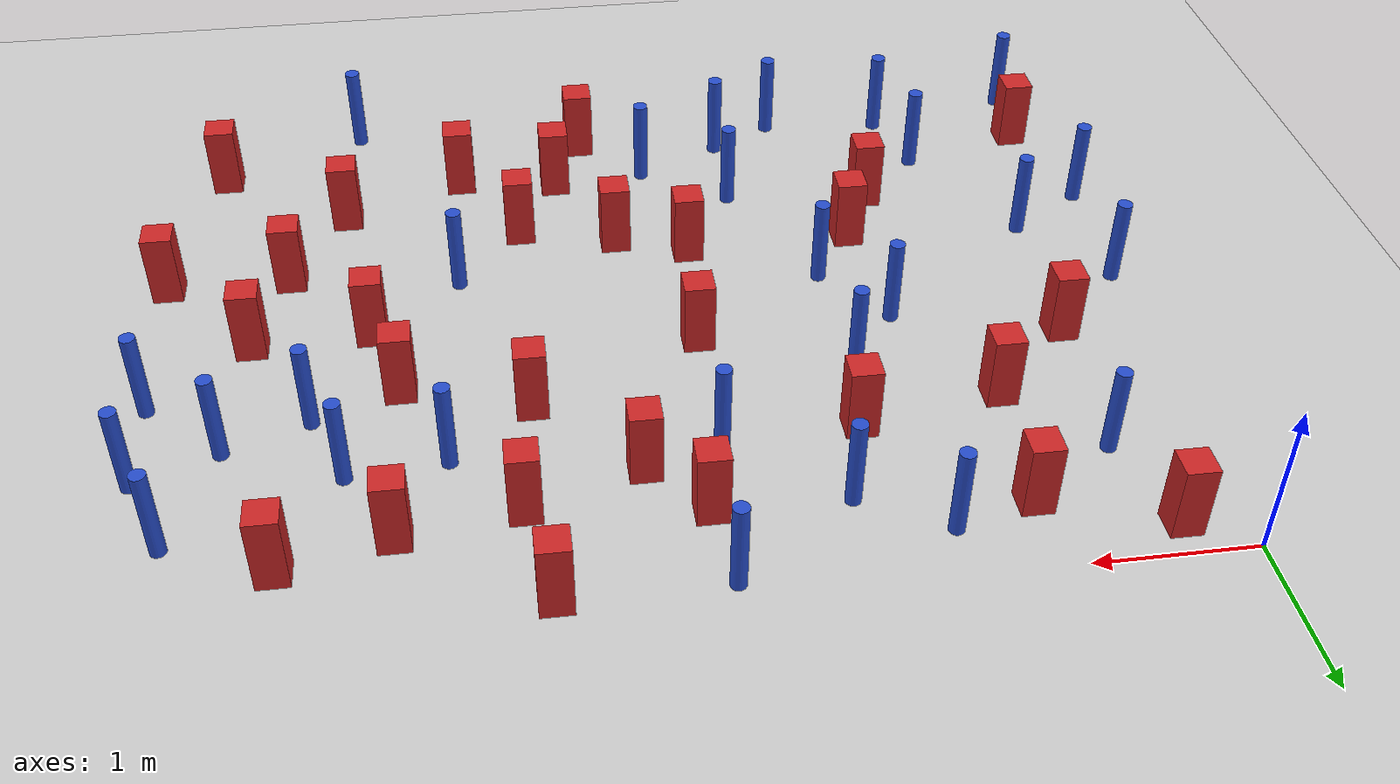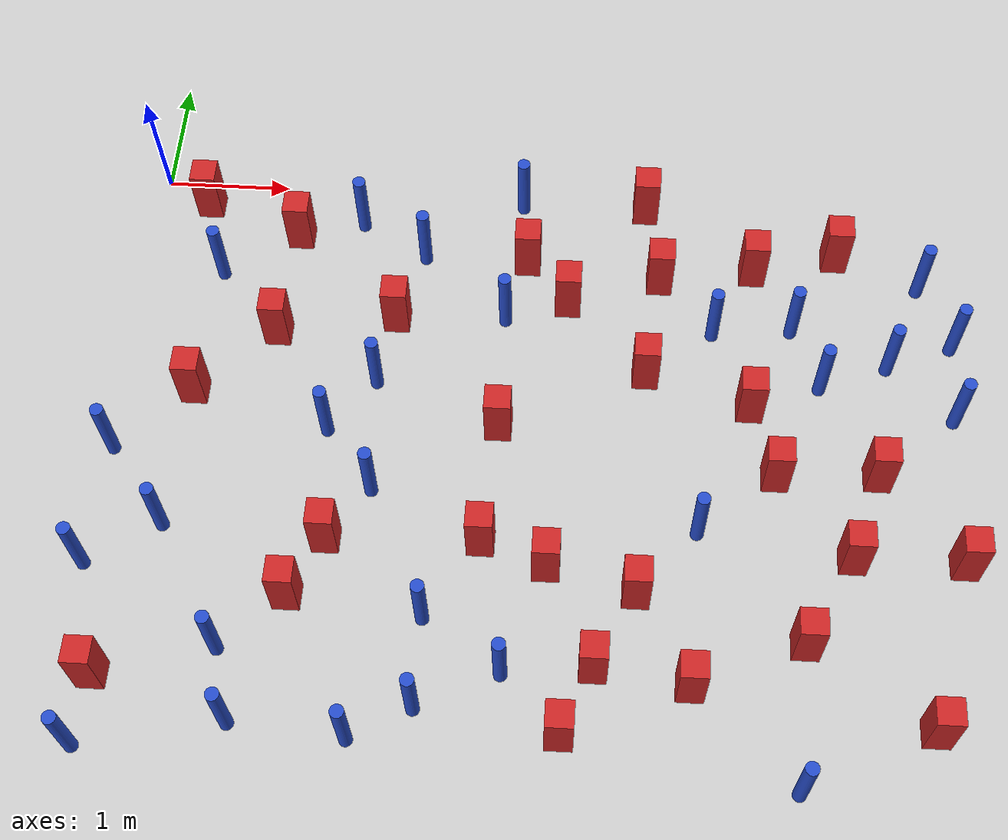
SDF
<sdf version="1.6">
 <world name="default">
  <model name="ground_plane">
   <static>1</static>
   <link name="link">
    <collision name="collision">
     <geometry><plane><normal>0 0 1</normal><size>100 100</size></plane></geometry>
     <surface><friction><ode><mu>100</mu><mu2>50</mu2></ode></friction></surface>
    </collision>
    <visual name="visual">
     <cast_shadows>0</cast_shadows>
     <geometry><plane><normal>0 0 1</normal><size>100 100</size></plane></geometry>
     <material>
      <ambient>1.0 1.0 1.0 1.0</ambient>
      <diffuse>0.8 0.8 0.8 1.0</diffuse>
      <specular>0.01 0.01 0.01 1.000000</specular>
     </material>
    </visual>
   </link>
  </model>
  <model name="NamedLocations">
   <static>true</static>
   <link name="DefaultStart"><pose>8.5 0 0 0 0 3.14</pose></link>
  </model>
  <model name="pole_obstacle0">
   <static>true</static>
   <pose>2.45319481599 -4.44269924084 7.38925637345e-09 -8.47170692798e-08 1.24976765033e-08 -1.74513093019e-07</pose>
   <link name="link">
    <pose>0 0 0.3 0 -0 0</pose>
    <inertial>
     <mass>1</mass>
     <inertia><ixx>0.145833</ixx><ixy>0</ixy><ixz>0</ixz><iyy>0.145833</iyy><iyz>0</iyz><izz>0.125</izz></inertia>
    </inertial>
    <collision name="collision">
     <geometry><cylinder><radius>0.05</radius><length>.6</length></cylinder></geometry>
    </collision>
    <visual name="visual">
     <geometry><cylinder><radius>0.05</radius><length>.6</length></cylinder></geometry>
     <material>
      <script><name>Gazebo/Blue</name><uri>file://media/materials/scripts/gazebo.material</uri></script>
     </material>
    </visual>
   </link>
  </model>
  <model name="pole_obstacle1">
   <static>true</static>
   <pose>5.110812077 -4.89288464973 7.38925637345e-09 -8.47170692796e-08 1.24976764786e-08 -1.74513093032e-07</pose>
   <link name="link">
    <pose>0 0 0.3 0 -0 0</pose>
    <inertial>
     <mass>1</mass>
     <inertia><ixx>0.145833</ixx><ixy>0</ixy><ixz>0</ixz><iyy>0.145833</iyy><iyz>0</iyz><izz>0.125</izz></inertia>
    </inertial>
    <collision name="collision">
     <geometry><cylinder><radius>0.05</radius><length>.6</length></cylinder></geometry>
    </collision>
    <visual name="visual">
     <geometry><cylinder><radius>0.05</radius><length>.6</length></cylinder></geometry>
     <material>
      <script><name>Gazebo/Blue</name><uri>file://media/materials/scripts/gazebo.material</uri></script>
     </material>
    </visual>
   </link>
  </model>
  <model name="square_post_obstacle6">
   <static>true</static>
   <pose>4.00243463076 -1.67645214226 1.91545236811e-07 -7.35059704564e-06 1.12565212e-07 2.39332434364e-05</pose>
   <link name="link">
    <pose>0 0 0.25 0 -0 0</pose>
    <inertial>
     <mass>100</mass>
     <inertia>
      <ixx>0.166667</ixx>
      <ixy>0</ixy>
      <ixz>0</ixz>
      <iyy>0.166667</iyy>
      <iyz>0</iyz>
      <izz>0.166667</izz>
     </inertia>
    </inertial>
    <collision name="collision"><geometry><box><size>.2 .2 .5</size></box></geometry></collision>
    <visual name="visual">
     <geometry><box><size>.2 .2 .5</size></box></geometry>
     <material>
      <script><name>Gazebo/Red</name><uri>file://media/materials/scripts/gazebo.material</uri></script>
     </material>
    </visual>
   </link>
  </model>
  <model name="pole_obstacle7">
   <static>true</static>
   <pose>6.15677421784 -0.760147875584 7.38925637345e-09 -8.47170692799e-08 1.24976765038e-08 -1.74513093018e-07</pose>
   <link name="link">
    <pose>0 0 0.3 0 -0 0</pose>
    <inertial>
     <mass>1</mass>
     <inertia><ixx>0.145833</ixx><ixy>0</ixy><ixz>0</ixz><iyy>0.145833</iyy><iyz>0</iyz><izz>0.125</izz></inertia>
    </inertial>
    <collision name="collision">
     <geometry><cylinder><radius>0.05</radius><length>.6</length></cylinder></geometry>
    </collision>
    <visual name="visual">
     <geometry><cylinder><radius>0.05</radius><length>.6</length></cylinder></geometry>
     <material>
      <script><name>Gazebo/Blue</name><uri>file://media/materials/scripts/gazebo.material</uri></script>
     </material>
    </visual>
   </link>
  </model>
  <model name="square_post_obstacle12">
   <static>true</static>
   <pose>3.03835223823 -0.663720716733 1.91545236811e-07 -7.35059704564e-06 1.12565212e-07 2.39332434364e-05</pose>
   <link name="link">
    <pose>0 0 0.25 0 -0 0</pose>
    <inertial>
     <mass>100</mass>
     <inertia>
      <ixx>0.166667</ixx>
      <ixy>0</ixy>
      <ixz>0</ixz>
      <iyy>0.166667</iyy>
      <iyz>0</iyz>
      <izz>0.166667</izz>
     </inertia>
    </inertial>
    <collision name="collision"><geometry><box><size>.2 .2 .5</size></box></geometry></collision>
    <visual name="visual">
     <geometry><box><size>.2 .2 .5</size></box></geometry>
     <material>
      <script><name>Gazebo/Red</name><uri>file://media/materials/scripts/gazebo.material</uri></script>
     </material>
    </visual>
   </link>
  </model>
  <model name="pole_obstacle14">
   <static>true</static>
   <pose>0.145431486361 -4.83074506989 7.38925637345e-09 -8.471706928e-08 1.24976765036e-08 -1.74513093019e-07</pose>
   <link name="link">
    <pose>0 0 0.3 0 -0 0</pose>
    <inertial>
     <mass>1</mass>
     <inertia><ixx>0.145833</ixx><ixy>0</ixy><ixz>0</ixz><iyy>0.145833</iyy><iyz>0</iyz><izz>0.125</izz></inertia>
    </inertial>
    <collision name="collision">
     <geometry><cylinder><radius>0.05</radius><length>.6</length></cylinder></geometry>
    </collision>
    <visual name="visual">
     <geometry><cylinder><radius>0.05</radius><length>.6</length></cylinder></geometry>
     <material>
      <script><name>Gazebo/Blue</name><uri>file://media/materials/scripts/gazebo.material</uri></script>
     </material>
    </visual>
   </link>
  </model>
  <model name="pole_obstacle16">
   <static>true</static>
   <pose>1.93347617222 -1.84121903709 7.38925637345e-09 -8.471706928e-08 1.24976765079e-08 -1.74513093017e-07</pose>
   <link name="link">
    <pose>0 0 0.3 0 -0 0</pose>
    <inertial>
     <mass>1</mass>
     <inertia><ixx>0.145833</ixx><ixy>0</ixy><ixz>0</ixz><iyy>0.145833</iyy><iyz>0</iyz><izz>0.125</izz></inertia>
    </inertial>
    <collision name="collision">
     <geometry><cylinder><radius>0.05</radius><length>.6</length></cylinder></geometry>
    </collision>
    <visual name="visual">
     <geometry><cylinder><radius>0.05</radius><length>.6</length></cylinder></geometry>
     <material>
      <script><name>Gazebo/Blue</name><uri>file://media/materials/scripts/gazebo.material</uri></script>
     </material>
    </visual>
   </link>
  </model>
  <model name="pole_obstacle18">
   <static>true</static>
   <pose>2.45848965624 -3.77160966524 7.38925637345e-09 -8.47170692798e-08 1.24976764939e-08 -1.74513093025e-07</pose>
   <link name="link">
    <pose>0 0 0.3 0 -0 0</pose>
    <inertial>
     <mass>1</mass>
     <inertia><ixx>0.145833</ixx><ixy>0</ixy><ixz>0</ixz><iyy>0.145833</iyy><iyz>0</iyz><izz>0.125</izz></inertia>
    </inertial>
    <collision name="collision">
     <geometry><cylinder><radius>0.05</radius><length>.6</length></cylinder></geometry>
    </collision>
    <visual name="visual">
     <geometry><cylinder><radius>0.05</radius><length>.6</length></cylinder></geometry>
     <material>
      <script><name>Gazebo/Blue</name><uri>file://media/materials/scripts/gazebo.material</uri></script>
     </material>
    </visual>
   </link>
  </model>
  <model name="pole_obstacle23">
   <static>true</static>
   <pose>2.20990066824 -0.653696793738 7.38925637345e-09 -8.471706928e-08 1.24976765177e-08 -1.74513093012e-07</pose>
   <link name="link">
    <pose>0 0 0.3 0 -0 0</pose>
    <inertial>
     <mass>1</mass>
     <inertia><ixx>0.145833</ixx><ixy>0</ixy><ixz>0</ixz><iyy>0.145833</iyy><iyz>0</iyz><izz>0.125</izz></inertia>
    </inertial>
    <collision name="collision">
     <geometry><cylinder><radius>0.05</radius><length>.6</length></cylinder></geometry>
    </collision>
    <visual name="visual">
     <geometry><cylinder><radius>0.05</radius><length>.6</length></cylinder></geometry>
     <material>
      <script><name>Gazebo/Blue</name><uri>file://media/materials/scripts/gazebo.material</uri></script>
     </material>
    </visual>
   </link>
  </model>
  <model name="pole_obstacle28">
   <static>true</static>
   <pose>2.97211600172 -0.102306544609 7.38925637345e-09 -8.471706928e-08 1.24976765088e-08 -1.74513093017e-07</pose>
   <link name="link">
    <pose>0 0 0.3 0 -0 0</pose>
    <inertial>
     <mass>1</mass>
     <inertia><ixx>0.145833</ixx><ixy>0</ixy><ixz>0</ixz><iyy>0.145833</iyy><iyz>0</iyz><izz>0.125</izz></inertia>
    </inertial>
    <collision name="collision">
     <geometry><cylinder><radius>0.05</radius><length>.6</length></cylinder></geometry>
    </collision>
    <visual name="visual">
     <geometry><cylinder><radius>0.05</radius><length>.6</length></cylinder></geometry>
     <material>
      <script><name>Gazebo/Blue</name><uri>file://media/materials/scripts/gazebo.material</uri></script>
     </material>
    </visual>
   </link>
  </model>
  <model name="square_post_obstacle37">
   <static>true</static>
   <pose>1.17955000722 -0.497676568372 1.91545236811e-07 -7.35059704564e-06 1.12565212e-07 2.39332434364e-05</pose>
   <link name="link">
    <pose>0 0 0.25 0 -0 0</pose>
    <inertial>
     <mass>100</mass>
     <inertia>
      <ixx>0.166667</ixx>
      <ixy>0</ixy>
      <ixz>0</ixz>
      <iyy>0.166667</iyy>
      <iyz>0</iyz>
      <izz>0.166667</izz>
     </inertia>
    </inertial>
    <collision name="collision"><geometry><box><size>.2 .2 .5</size></box></geometry></collision>
    <visual name="visual">
     <geometry><box><size>.2 .2 .5</size></box></geometry>
     <material>
      <script><name>Gazebo/Red</name><uri>file://media/materials/scripts/gazebo.material</uri></script>
     </material>
    </visual>
   </link>
  </model>
  <model name="pole_obstacle43">
   <static>true</static>
   <pose>4.41286751085 -2.99656042909 7.38925637345e-09 -8.47170692798e-08 1.24976764937e-08 -1.74513093023e-07</pose>
   <link name="link">
    <pose>0 0 0.3 0 -0 0</pose>
    <inertial>
     <mass>1</mass>
     <inertia><ixx>0.145833</ixx><ixy>0</ixy><ixz>0</ixz><iyy>0.145833</iyy><iyz>0</iyz><izz>0.125</izz></inertia>
    </inertial>
    <collision name="collision">
     <geometry><cylinder><radius>0.05</radius><length>.6</length></cylinder></geometry>
    </collision>
    <visual name="visual">
     <geometry><cylinder><radius>0.05</radius><length>.6</length></cylinder></geometry>
     <material>
      <script><name>Gazebo/Blue</name><uri>file://media/materials/scripts/gazebo.material</uri></script>
     </material>
    </visual>
   </link>
  </model>
  <model name="square_post_obstacle41">
   <static>true</static>
   <pose>5.75337226659 -2.47471514267 1.91545236811e-07 -7.35059704564e-06 1.12565212e-07 2.39332434364e-05</pose>
   <link name="link">
    <pose>0 0 0.25 0 -0 0</pose>
    <inertial>
     <mass>100</mass>
     <inertia>
      <ixx>0.166667</ixx>
      <ixy>0</ixy>
      <ixz>0</ixz>
      <iyy>0.166667</iyy>
      <iyz>0</iyz>
      <izz>0.166667</izz>
     </inertia>
    </inertial>
    <collision name="collision"><geometry><box><size>.2 .2 .5</size></box></geometry></collision>
    <visual name="visual">
     <geometry><box><size>.2 .2 .5</size></box></geometry>
     <material>
      <script><name>Gazebo/Red</name><uri>file://media/materials/scripts/gazebo.material</uri></script>
     </material>
    </visual>
   </link>
  </model>
  <model name="pole_obstacle46">
   <static>true</static>
   <pose>5.34829332922 -1.71451990077 7.38925637345e-09 -8.471706928e-08 1.24976765134e-08 -1.74513093015e-07</pose>
   <link name="link">
    <pose>0 0 0.3 0 -0 0</pose>
    <inertial>
     <mass>1</mass>
     <inertia><ixx>0.145833</ixx><ixy>0</ixy><ixz>0</ixz><iyy>0.145833</iyy><iyz>0</iyz><izz>0.125</izz></inertia>
    </inertial>
    <collision name="collision">
     <geometry><cylinder><radius>0.05</radius><length>.6</length></cylinder></geometry>
    </collision>
    <visual name="visual">
     <geometry><cylinder><radius>0.05</radius><length>.6</length></cylinder></geometry>
     <material>
      <script><name>Gazebo/Blue</name><uri>file://media/materials/scripts/gazebo.material</uri></script>
     </material>
    </visual>
   </link>
  </model>
  <model name="pole_obstacle49">
   <static>true</static>
   <pose>0.00266151826803 -2.5237704497 7.38925637345e-09 -8.471706928e-08 1.24976765128e-08 -1.74513093013e-07</pose>
   <link name="link">
    <pose>0 0 0.3 0 -0 0</pose>
    <inertial>
     <mass>1</mass>
     <inertia><ixx>0.145833</ixx><ixy>0</ixy><ixz>0</ixz><iyy>0.145833</iyy><iyz>0</iyz><izz>0.125</izz></inertia>
    </inertial>
    <collision name="collision">
     <geometry><cylinder><radius>0.05</radius><length>.6</length></cylinder></geometry>
    </collision>
    <visual name="visual">
     <geometry><cylinder><radius>0.05</radius><length>.6</length></cylinder></geometry>
     <material>
      <script><name>Gazebo/Blue</name><uri>file://media/materials/scripts/gazebo.material</uri></script>
     </material>
    </visual>
   </link>
  </model>
  <model name="square_post_obstacle49">
   <static>true</static>
   <pose>1.11537166356 -1.43196748717 1.91545236811e-07 -7.35059704564e-06 1.12565212e-07 2.39332434364e-05</pose>
   <link name="link">
    <pose>0 0 0.25 0 -0 0</pose>
    <inertial>
     <mass>100</mass>
     <inertia>
      <ixx>0.166667</ixx>
      <ixy>0</ixy>
      <ixz>0</ixz>
      <iyy>0.166667</iyy>
      <iyz>0</iyz>
      <izz>0.166667</izz>
     </inertia>
    </inertial>
    <collision name="collision"><geometry><box><size>.2 .2 .5</size></box></geometry></collision>
    <visual name="visual">
     <geometry><box><size>.2 .2 .5</size></box></geometry>
     <material>
      <script><name>Gazebo/Red</name><uri>file://media/materials/scripts/gazebo.material</uri></script>
     </material>
    </visual>
   </link>
  </model>
  <model name="square_post_obstacle52">
   <static>true</static>
   <pose>0.542197385538 -1.99535825261 1.91545236811e-07 -7.35059704564e-06 1.12565212e-07 2.39332434364e-05</pose>
   <link name="link">
    <pose>0 0 0.25 0 -0 0</pose>
    <inertial>
     <mass>100</mass>
     <inertia>
      <ixx>0.166667</ixx>
      <ixy>0</ixy>
      <ixz>0</ixz>
      <iyy>0.166667</iyy>
      <iyz>0</iyz>
      <izz>0.166667</izz>
     </inertia>
    </inertial>
    <collision name="collision"><geometry><box><size>.2 .2 .5</size></box></geometry></collision>
    <visual name="visual">
     <geometry><box><size>.2 .2 .5</size></box></geometry>
     <material>
      <script><name>Gazebo/Red</name><uri>file://media/materials/scripts/gazebo.material</uri></script>
     </material>
    </visual>
   </link>
  </model>
  <model name="square_post_obstacle56">
   <static>true</static>
   <pose>3.32055986988 -3.33604358049 1.91545236811e-07 -7.35059704564e-06 1.12565212e-07 2.39332434364e-05</pose>
   <link name="link">
    <pose>0 0 0.25 0 -0 0</pose>
    <inertial>
     <mass>100</mass>
     <inertia>
      <ixx>0.166667</ixx>
      <ixy>0</ixy>
      <ixz>0</ixz>
      <iyy>0.166667</iyy>
      <iyz>0</iyz>
      <izz>0.166667</izz>
     </inertia>
    </inertial>
    <collision name="collision"><geometry><box><size>.2 .2 .5</size></box></geometry></collision>
    <visual name="visual">
     <geometry><box><size>.2 .2 .5</size></box></geometry>
     <material>
      <script><name>Gazebo/Red</name><uri>file://media/materials/scripts/gazebo.material</uri></script>
     </material>
    </visual>
   </link>
  </model>
  <model name="square_post_obstacle67">
   <static>true</static>
   <pose>1.47637966966 -3.65562101043 1.91545236811e-07 -7.35059704564e-06 1.12565212e-07 2.39332434364e-05</pose>
   <link name="link">
    <pose>0 0 0.25 0 -0 0</pose>
    <inertial>
     <mass>100</mass>
     <inertia>
      <ixx>0.166667</ixx>
      <ixy>0</ixy>
      <ixz>0</ixz>
      <iyy>0.166667</iyy>
      <iyz>0</iyz>
      <izz>0.166667</izz>
     </inertia>
    </inertial>
    <collision name="collision"><geometry><box><size>.2 .2 .5</size></box></geometry></collision>
    <visual name="visual">
     <geometry><box><size>.2 .2 .5</size></box></geometry>
     <material>
      <script><name>Gazebo/Red</name><uri>file://media/materials/scripts/gazebo.material</uri></script>
     </material>
    </visual>
   </link>
  </model>
  <model name="pole_obstacle65">
   <static>true</static>
   <pose>0.48113209461 -3.14065445239 7.38925637345e-09 -8.471706928e-08 1.24976765089e-08 -1.74513093016e-07</pose>
   <link name="link">
    <pose>0 0 0.3 0 -0 0</pose>
    <inertial>
     <mass>1</mass>
     <inertia><ixx>0.145833</ixx><ixy>0</ixy><ixz>0</ixz><iyy>0.145833</iyy><iyz>0</iyz><izz>0.125</izz></inertia>
    </inertial>
    <collision name="collision">
     <geometry><cylinder><radius>0.05</radius><length>.6</length></cylinder></geometry>
    </collision>
    <visual name="visual">
     <geometry><cylinder><radius>0.05</radius><length>.6</length></cylinder></geometry>
     <material>
      <script><name>Gazebo/Blue</name><uri>file://media/materials/scripts/gazebo.material</uri></script>
     </material>
    </visual>
   </link>
  </model>
  <model name="square_post_obstacle68">
   <static>true</static>
   <pose>3.97317553825 -0.0992174458361 1.91545236811e-07 -7.35059704564e-06 1.12565212e-07 2.39332434364e-05</pose>
   <link name="link">
    <pose>0 0 0.25 0 -0 0</pose>
    <inertial>
     <mass>100</mass>
     <inertia>
      <ixx>0.166667</ixx>
      <ixy>0</ixy>
      <ixz>0</ixz>
      <iyy>0.166667</iyy>
      <iyz>0</iyz>
      <izz>0.166667</izz>
     </inertia>
    </inertial>
    <collision name="collision"><geometry><box><size>.2 .2 .5</size></box></geometry></collision>
    <visual name="visual">
     <geometry><box><size>.2 .2 .5</size></box></geometry>
     <material>
      <script><name>Gazebo/Red</name><uri>file://media/materials/scripts/gazebo.material</uri></script>
     </material>
    </visual>
   </link>
  </model>
  <model name="square_post_obstacle70">
   <static>true</static>
   <pose>4.84049237456 -0.670427888841 1.91545236811e-07 -7.35059704564e-06 1.12565212e-07 2.39332434364e-05</pose>
   <link name="link">
    <pose>0 0 0.25 0 -0 0</pose>
    <inertial>
     <mass>100</mass>
     <inertia>
      <ixx>0.166667</ixx>
      <ixy>0</ixy>
      <ixz>0</ixz>
      <iyy>0.166667</iyy>
      <iyz>0</iyz>
      <izz>0.166667</izz>
     </inertia>
    </inertial>
    <collision name="collision"><geometry><box><size>.2 .2 .5</size></box></geometry></collision>
    <visual name="visual">
     <geometry><box><size>.2 .2 .5</size></box></geometry>
     <material>
      <script><name>Gazebo/Red</name><uri>file://media/materials/scripts/gazebo.material</uri></script>
     </material>
    </visual>
   </link>
  </model>
  <model name="pole_obstacle81">
   <static>true</static>
   <pose>1.18306871838 -4.61463756703 7.38925637345e-09 -8.47170692799e-08 1.24976765033e-08 -1.74513093018e-07</pose>
   <link name="link">
    <pose>0 0 0.3 0 -0 0</pose>
    <inertial>
     <mass>1</mass>
     <inertia><ixx>0.145833</ixx><ixy>0</ixy><ixz>0</ixz><iyy>0.145833</iyy><iyz>0</iyz><izz>0.125</izz></inertia>
    </inertial>
    <collision name="collision">
     <geometry><cylinder><radius>0.05</radius><length>.6</length></cylinder></geometry>
    </collision>
    <visual name="visual">
     <geometry><cylinder><radius>0.05</radius><length>.6</length></cylinder></geometry>
     <material>
      <script><name>Gazebo/Blue</name><uri>file://media/materials/scripts/gazebo.material</uri></script>
     </material>
    </visual>
   </link>
  </model>
  <model name="pole_obstacle82">
   <static>true</static>
   <pose>1.60013649807 -2.28201325467 7.38925637345e-09 -8.47170692799e-08 1.24976765053e-08 -1.74513093017e-07</pose>
   <link name="link">
    <pose>0 0 0.3 0 -0 0</pose>
    <inertial>
     <mass>1</mass>
     <inertia><ixx>0.145833</ixx><ixy>0</ixy><ixz>0</ixz><iyy>0.145833</iyy><iyz>0</iyz><izz>0.125</izz></inertia>
    </inertial>
    <collision name="collision">
     <geometry><cylinder><radius>0.05</radius><length>.6</length></cylinder></geometry>
    </collision>
    <visual name="visual">
     <geometry><cylinder><radius>0.05</radius><length>.6</length></cylinder></geometry>
     <material>
      <script><name>Gazebo/Blue</name><uri>file://media/materials/scripts/gazebo.material</uri></script>
     </material>
    </visual>
   </link>
  </model>
  <model name="square_post_obstacle80">
   <static>true</static>
   <pose>4.09728990456 -0.79292504854 1.91545236811e-07 -7.35059704564e-06 1.12565212e-07 2.39332434364e-05</pose>
   <link name="link">
    <pose>0 0 0.25 0 -0 0</pose>
    <inertial>
     <mass>100</mass>
     <inertia>
      <ixx>0.166667</ixx>
      <ixy>0</ixy>
      <ixz>0</ixz>
      <iyy>0.166667</iyy>
      <iyz>0</iyz>
      <izz>0.166667</izz>
     </inertia>
    </inertial>
    <collision name="collision"><geometry><box><size>.2 .2 .5</size></box></geometry></collision>
    <visual name="visual">
     <geometry><box><size>.2 .2 .5</size></box></geometry>
     <material>
      <script><name>Gazebo/Red</name><uri>file://media/materials/scripts/gazebo.material</uri></script>
     </material>
    </visual>
   </link>
  </model>
  <model name="square_post_obstacle83">
   <static>true</static>
   <pose>1.70178001027 -3.19657636864 1.91545236811e-07 -7.35059704564e-06 1.12565212e-07 2.39332434364e-05</pose>
   <link name="link">
    <pose>0 0 0.25 0 -0 0</pose>
    <inertial>
     <mass>100</mass>
     <inertia>
      <ixx>0.166667</ixx>
      <ixy>0</ixy>
      <ixz>0</ixz>
      <iyy>0.166667</iyy>
      <iyz>0</iyz>
      <izz>0.166667</izz>
     </inertia>
    </inertial>
    <collision name="collision"><geometry><box><size>.2 .2 .5</size></box></geometry></collision>
    <visual name="visual">
     <geometry><box><size>.2 .2 .5</size></box></geometry>
     <material>
      <script><name>Gazebo/Red</name><uri>file://media/materials/scripts/gazebo.material</uri></script>
     </material>
    </visual>
   </link>
  </model>
  <model name="square_post_obstacle88">
   <static>true</static>
   <pose>4.805602678 -1.93061500642 1.91545236811e-07 -7.35059704564e-06 1.12565212e-07 2.39332434364e-05</pose>
   <link name="link">
    <pose>0 0 0.25 0 -0 0</pose>
    <inertial>
     <mass>100</mass>
     <inertia>
      <ixx>0.166667</ixx>
      <ixy>0</ixy>
      <ixz>0</ixz>
      <iyy>0.166667</iyy>
      <iyz>0</iyz>
      <izz>0.166667</izz>
     </inertia>
    </inertial>
    <collision name="collision"><geometry><box><size>.2 .2 .5</size></box></geometry></collision>
    <visual name="visual">
     <geometry><box><size>.2 .2 .5</size></box></geometry>
     <material>
      <script><name>Gazebo/Red</name><uri>file://media/materials/scripts/gazebo.material</uri></script>
     </material>
    </visual>
   </link>
  </model>
  <model name="square_post_obstacle97">
   <static>true</static>
   <pose>4.36598024586 -4.18890298477 1.91545236811e-07 -7.35059704564e-06 1.12565212e-07 2.39332434364e-05</pose>
   <link name="link">
    <pose>0 0 0.25 0 -0 0</pose>
    <inertial>
     <mass>100</mass>
     <inertia>
      <ixx>0.166667</ixx>
      <ixy>0</ixy>
      <ixz>0</ixz>
      <iyy>0.166667</iyy>
      <iyz>0</iyz>
      <izz>0.166667</izz>
     </inertia>
    </inertial>
    <collision name="collision"><geometry><box><size>.2 .2 .5</size></box></geometry></collision>
    <visual name="visual">
     <geometry><box><size>.2 .2 .5</size></box></geometry>
     <material>
      <script><name>Gazebo/Red</name><uri>file://media/materials/scripts/gazebo.material</uri></script>
     </material>
    </visual>
   </link>
  </model>
  <model name="pole_obstacle114">
   <static>true</static>
   <pose>1.02913164631 -4.07853367812 7.38925637345e-09 -8.47170692799e-08 1.24976765021e-08 -1.74513093019e-07</pose>
   <link name="link">
    <pose>0 0 0.3 0 -0 0</pose>
    <inertial>
     <mass>1</mass>
     <inertia><ixx>0.145833</ixx><ixy>0</ixy><ixz>0</ixz><iyy>0.145833</iyy><iyz>0</iyz><izz>0.125</izz></inertia>
    </inertial>
    <collision name="collision">
     <geometry><cylinder><radius>0.05</radius><length>.6</length></cylinder></geometry>
    </collision>
    <visual name="visual">
     <geometry><cylinder><radius>0.05</radius><length>.6</length></cylinder></geometry>
     <material>
      <script><name>Gazebo/Blue</name><uri>file://media/materials/scripts/gazebo.material</uri></script>
     </material>
    </visual>
   </link>
  </model>
  <model name="pole_obstacle117">
   <static>true</static>
   <pose>5.13882890534 -1.20481461348 7.38925637345e-09 -8.471706928e-08 1.24976765134e-08 -1.74513093015e-07</pose>
   <link name="link">
    <pose>0 0 0.3 0 -0 0</pose>
    <inertial>
     <mass>1</mass>
     <inertia><ixx>0.145833</ixx><ixy>0</ixy><ixz>0</ixz><iyy>0.145833</iyy><iyz>0</iyz><izz>0.125</izz></inertia>
    </inertial>
    <collision name="collision">
     <geometry><cylinder><radius>0.05</radius><length>.6</length></cylinder></geometry>
    </collision>
    <visual name="visual">
     <geometry><cylinder><radius>0.05</radius><length>.6</length></cylinder></geometry>
     <material>
      <script><name>Gazebo/Blue</name><uri>file://media/materials/scripts/gazebo.material</uri></script>
     </material>
    </visual>
   </link>
  </model>
  <model name="square_post_obstacle107">
   <static>true</static>
   <pose>5.1773045139 -3.83583907621 1.91545236811e-07 -7.35059704564e-06 1.12565212e-07 2.39332434364e-05</pose>
   <link name="link">
    <pose>0 0 0.25 0 -0 0</pose>
    <inertial>
     <mass>100</mass>
     <inertia>
      <ixx>0.166667</ixx>
      <ixy>0</ixy>
      <ixz>0</ixz>
      <iyy>0.166667</iyy>
      <iyz>0</iyz>
      <izz>0.166667</izz>
     </inertia>
    </inertial>
    <collision name="collision"><geometry><box><size>.2 .2 .5</size></box></geometry></collision>
    <visual name="visual">
     <geometry><box><size>.2 .2 .5</size></box></geometry>
     <material>
      <script><name>Gazebo/Red</name><uri>file://media/materials/scripts/gazebo.material</uri></script>
     </material>
    </visual>
   </link>
  </model>
  <model name="square_post_obstacle109">
   <static>true</static>
   <pose>2.89922569255 -2.19452560358 1.91545236811e-07 -7.35059704564e-06 1.12565212e-07 2.39332434364e-05</pose>
   <link name="link">
    <pose>0 0 0.25 0 -0 0</pose>
    <inertial>
     <mass>100</mass>
     <inertia>
      <ixx>0.166667</ixx>
      <ixy>0</ixy>
      <ixz>0</ixz>
      <iyy>0.166667</iyy>
      <iyz>0</iyz>
      <izz>0.166667</izz>
     </inertia>
    </inertial>
    <collision name="collision"><geometry><box><size>.2 .2 .5</size></box></geometry></collision>
    <visual name="visual">
     <geometry><box><size>.2 .2 .5</size></box></geometry>
     <material>
      <script><name>Gazebo/Red</name><uri>file://media/materials/scripts/gazebo.material</uri></script>
     </material>
    </visual>
   </link>
  </model>
  <model name="square_post_obstacle113">
   <static>true</static>
   <pose>5.53743807144 -3.15821754719 1.91545236811e-07 -7.35059704564e-06 1.12565212e-07 2.39332434364e-05</pose>
   <link name="link">
    <pose>0 0 0.25 0 -0 0</pose>
    <inertial>
     <mass>100</mass>
     <inertia>
      <ixx>0.166667</ixx>
      <ixy>0</ixy>
      <ixz>0</ixz>
      <iyy>0.166667</iyy>
      <iyz>0</iyz>
      <izz>0.166667</izz>
     </inertia>
    </inertial>
    <collision name="collision"><geometry><box><size>.2 .2 .5</size></box></geometry></collision>
    <visual name="visual">
     <geometry><box><size>.2 .2 .5</size></box></geometry>
     <material>
      <script><name>Gazebo/Red</name><uri>file://media/materials/scripts/gazebo.material</uri></script>
     </material>
    </visual>
   </link>
  </model>
  <model name="square_post_obstacle114">
   <static>true</static>
   <pose>5.50180842541 -0.495988527625 1.91545236811e-07 -7.35059704564e-06 1.12565212e-07 2.39332434364e-05</pose>
   <link name="link">
    <pose>0 0 0.25 0 -0 0</pose>
    <inertial>
     <mass>100</mass>
     <inertia>
      <ixx>0.166667</ixx>
      <ixy>0</ixy>
      <ixz>0</ixz>
      <iyy>0.166667</iyy>
      <iyz>0</iyz>
      <izz>0.166667</izz>
     </inertia>
    </inertial>
    <collision name="collision"><geometry><box><size>.2 .2 .5</size></box></geometry></collision>
    <visual name="visual">
     <geometry><box><size>.2 .2 .5</size></box></geometry>
     <material>
      <script><name>Gazebo/Red</name><uri>file://media/materials/scripts/gazebo.material</uri></script>
     </material>
    </visual>
   </link>
  </model>
  <model name="pole_obstacle133">
   <static>true</static>
   <pose>6.3856419927 -1.29599310036 7.38925637345e-09 -8.471706928e-08 1.24976765134e-08 -1.74513093015e-07</pose>
   <link name="link">
    <pose>0 0 0.3 0 -0 0</pose>
    <inertial>
     <mass>1</mass>
     <inertia><ixx>0.145833</ixx><ixy>0</ixy><ixz>0</ixz><iyy>0.145833</iyy><iyz>0</iyz><izz>0.125</izz></inertia>
    </inertial>
    <collision name="collision">
     <geometry><cylinder><radius>0.05</radius><length>.6</length></cylinder></geometry>
    </collision>
    <visual name="visual">
     <geometry><cylinder><radius>0.05</radius><length>.6</length></cylinder></geometry>
     <material>
      <script><name>Gazebo/Blue</name><uri>file://media/materials/scripts/gazebo.material</uri></script>
     </material>
    </visual>
   </link>
  </model>
  <model name="pole_obstacle134">
   <static>true</static>
   <pose>3.04232876489 -4.1602074259 7.38925637345e-09 -8.47170692798e-08 1.24976765033e-08 -1.74513093019e-07</pose>
   <link name="link">
    <pose>0 0 0.3 0 -0 0</pose>
    <inertial>
     <mass>1</mass>
     <inertia><ixx>0.145833</ixx><ixy>0</ixy><ixz>0</ixz><iyy>0.145833</iyy><iyz>0</iyz><izz>0.125</izz></inertia>
    </inertial>
    <collision name="collision">
     <geometry><cylinder><radius>0.05</radius><length>.6</length></cylinder></geometry>
    </collision>
    <visual name="visual">
     <geometry><cylinder><radius>0.05</radius><length>.6</length></cylinder></geometry>
     <material>
      <script><name>Gazebo/Blue</name><uri>file://media/materials/scripts/gazebo.material</uri></script>
     </material>
    </visual>
   </link>
  </model>
  <model name="square_post_obstacle120">
   <static>true</static>
   <pose>3.68701081456 -4.08731762734 1.91545236811e-07 -7.35059704564e-06 1.12565212e-07 2.39332434364e-05</pose>
   <link name="link">
    <pose>0 0 0.25 0 -0 0</pose>
    <inertial>
     <mass>100</mass>
     <inertia>
      <ixx>0.166667</ixx>
      <ixy>0</ixy>
      <ixz>0</ixz>
      <iyy>0.166667</iyy>
      <iyz>0</iyz>
      <izz>0.166667</izz>
     </inertia>
    </inertial>
    <collision name="collision"><geometry><box><size>.2 .2 .5</size></box></geometry></collision>
    <visual name="visual">
     <geometry><box><size>.2 .2 .5</size></box></geometry>
     <material>
      <script><name>Gazebo/Red</name><uri>file://media/materials/scripts/gazebo.material</uri></script>
     </material>
    </visual>
   </link>
  </model>
  <model name="square_post_obstacle124">
   <static>true</static>
   <pose>3.37688881154 -1.04663580848 1.91545236811e-07 -7.35059704564e-06 1.12565212e-07 2.39332434364e-05</pose>
   <link name="link">
    <pose>0 0 0.25 0 -0 0</pose>
    <inertial>
     <mass>100</mass>
     <inertia>
      <ixx>0.166667</ixx>
      <ixy>0</ixy>
      <ixz>0</ixz>
      <iyy>0.166667</iyy>
      <iyz>0</iyz>
      <izz>0.166667</izz>
     </inertia>
    </inertial>
    <collision name="collision"><geometry><box><size>.2 .2 .5</size></box></geometry></collision>
    <visual name="visual">
     <geometry><box><size>.2 .2 .5</size></box></geometry>
     <material>
      <script><name>Gazebo/Red</name><uri>file://media/materials/scripts/gazebo.material</uri></script>
     </material>
    </visual>
   </link>
  </model>
  <model name="square_post_obstacle129">
   <static>true</static>
   <pose>2.03746928216 -1.26183296181 1.91545236811e-07 -7.35059704564e-06 1.12565212e-07 2.39332434364e-05</pose>
   <link name="link">
    <pose>0 0 0.25 0 -0 0</pose>
    <inertial>
     <mass>100</mass>
     <inertia>
      <ixx>0.166667</ixx>
      <ixy>0</ixy>
      <ixz>0</ixz>
      <iyy>0.166667</iyy>
      <iyz>0</iyz>
      <izz>0.166667</izz>
     </inertia>
    </inertial>
    <collision name="collision"><geometry><box><size>.2 .2 .5</size></box></geometry></collision>
    <visual name="visual">
     <geometry><box><size>.2 .2 .5</size></box></geometry>
     <material>
      <script><name>Gazebo/Red</name><uri>file://media/materials/scripts/gazebo.material</uri></script>
     </material>
    </visual>
   </link>
  </model>
  <model name="pole_obstacle142">
   <static>true</static>
   <pose>4.52007379734 -1.26332180528 7.38925637345e-09 -8.471706928e-08 1.24976765134e-08 -1.74513093015e-07</pose>
   <link name="link">
    <pose>0 0 0.3 0 -0 0</pose>
    <inertial>
     <mass>1</mass>
     <inertia><ixx>0.145833</ixx><ixy>0</ixy><ixz>0</ixz><iyy>0.145833</iyy><iyz>0</iyz><izz>0.125</izz></inertia>
    </inertial>
    <collision name="collision">
     <geometry><cylinder><radius>0.05</radius><length>.6</length></cylinder></geometry>
    </collision>
    <visual name="visual">
     <geometry><cylinder><radius>0.05</radius><length>.6</length></cylinder></geometry>
     <material>
      <script><name>Gazebo/Blue</name><uri>file://media/materials/scripts/gazebo.material</uri></script>
     </material>
    </visual>
   </link>
  </model>
  <model name="pole_obstacle145">
   <static>true</static>
   <pose>2.01550627889 -4.6844382027 7.38925637345e-09 -8.47170692799e-08 1.24976765014e-08 -1.7451309302e-07</pose>
   <link name="link">
    <pose>0 0 0.3 0 -0 0</pose>
    <inertial>
     <mass>1</mass>
     <inertia><ixx>0.145833</ixx><ixy>0</ixy><ixz>0</ixz><iyy>0.145833</iyy><iyz>0</iyz><izz>0.125</izz></inertia>
    </inertial>
    <collision name="collision">
     <geometry><cylinder><radius>0.05</radius><length>.6</length></cylinder></geometry>
    </collision>
    <visual name="visual">
     <geometry><cylinder><radius>0.05</radius><length>.6</length></cylinder></geometry>
     <material>
      <script><name>Gazebo/Blue</name><uri>file://media/materials/scripts/gazebo.material</uri></script>
     </material>
    </visual>
   </link>
  </model>
  <model name="square_post_obstacle136">
   <static>true</static>
   <pose>0.396001858806 -0.224659655318 1.91545236811e-07 -7.35059704564e-06 1.12565212e-07 2.39332434364e-05</pose>
   <link name="link">
    <pose>0 0 0.25 0 -0 0</pose>
    <inertial>
     <mass>100</mass>
     <inertia>
      <ixx>0.166667</ixx>
      <ixy>0</ixy>
      <ixz>0</ixz>
      <iyy>0.166667</iyy>
      <iyz>0</iyz>
      <izz>0.166667</izz>
     </inertia>
    </inertial>
    <collision name="collision"><geometry><box><size>.2 .2 .5</size></box></geometry></collision>
    <visual name="visual">
     <geometry><box><size>.2 .2 .5</size></box></geometry>
     <material>
      <script><name>Gazebo/Red</name><uri>file://media/materials/scripts/gazebo.material</uri></script>
     </material>
    </visual>
   </link>
  </model>
  <model name="pole_obstacle148">
   <static>true</static>
   <pose>0.593964791001 -0.890331978313 7.38925637345e-09 -8.47170692799e-08 1.24976765008e-08 -1.7451309302e-07</pose>
   <link name="link">
    <pose>0 0 0.3 0 -0 0</pose>
    <inertial>
     <mass>1</mass>
     <inertia><ixx>0.145833</ixx><ixy>0</ixy><ixz>0</ixz><iyy>0.145833</iyy><iyz>0</iyz><izz>0.125</izz></inertia>
    </inertial>
    <collision name="collision">
     <geometry><cylinder><radius>0.05</radius><length>.6</length></cylinder></geometry>
    </collision>
    <visual name="visual">
     <geometry><cylinder><radius>0.05</radius><length>.6</length></cylinder></geometry>
     <material>
      <script><name>Gazebo/Blue</name><uri>file://media/materials/scripts/gazebo.material</uri></script>
     </material>
    </visual>
   </link>
  </model>
  <model name="pole_obstacle149">
   <static>true</static>
   <pose>5.87504987981 -1.50695841925 7.38925637345e-09 -8.471706928e-08 1.24976765134e-08 -1.74513093015e-07</pose>
   <link name="link">
    <pose>0 0 0.3 0 -0 0</pose>
    <inertial>
     <mass>1</mass>
     <inertia><ixx>0.145833</ixx><ixy>0</ixy><ixz>0</ixz><iyy>0.145833</iyy><iyz>0</iyz><izz>0.125</izz></inertia>
    </inertial>
    <collision name="collision">
     <geometry><cylinder><radius>0.05</radius><length>.6</length></cylinder></geometry>
    </collision>
    <visual name="visual">
     <geometry><cylinder><radius>0.05</radius><length>.6</length></cylinder></geometry>
     <material>
      <script><name>Gazebo/Blue</name><uri>file://media/materials/scripts/gazebo.material</uri></script>
     </material>
    </visual>
   </link>
  </model>
  <model name="pole_obstacle151">
   <static>true</static>
   <pose>2.89081946941 -1.21370943535 7.38925637345e-09 -8.471706928e-08 1.24976765152e-08 -1.74513093012e-07</pose>
   <link name="link">
    <pose>0 0 0.3 0 -0 0</pose>
    <inertial>
     <mass>1</mass>
     <inertia><ixx>0.145833</ixx><ixy>0</ixy><ixz>0</ixz><iyy>0.145833</iyy><iyz>0</iyz><izz>0.125</izz></inertia>
    </inertial>
    <collision name="collision">
     <geometry><cylinder><radius>0.05</radius><length>.6</length></cylinder></geometry>
    </collision>
    <visual name="visual">
     <geometry><cylinder><radius>0.05</radius><length>.6</length></cylinder></geometry>
     <material>
      <script><name>Gazebo/Blue</name><uri>file://media/materials/scripts/gazebo.material</uri></script>
     </material>
    </visual>
   </link>
  </model>
  <model name="square_post_obstacle162">
   <static>true</static>
   <pose>2.83413425002 -3.16032797785 1.91545236811e-07 -7.35059704564e-06 1.12565212e-07 2.39332434364e-05</pose>
   <link name="link">
    <pose>0 0 0.25 0 -0 0</pose>
    <inertial>
     <mass>100</mass>
     <inertia>
      <ixx>0.166667</ixx>
      <ixy>0</ixy>
      <ixz>0</ixz>
      <iyy>0.166667</iyy>
      <iyz>0</iyz>
      <izz>0.166667</izz>
     </inertia>
    </inertial>
    <collision name="collision"><geometry><box><size>.2 .2 .5</size></box></geometry></collision>
    <visual name="visual">
     <geometry><box><size>.2 .2 .5</size></box></geometry>
     <material>
      <script><name>Gazebo/Red</name><uri>file://media/materials/scripts/gazebo.material</uri></script>
     </material>
    </visual>
   </link>
  </model>
  <model name="square_post_obstacle165">
   <static>true</static>
   <pose>3.97311591454 -3.51120696415 1.91545236811e-07 -7.35059704564e-06 1.12565212e-07 2.39332434364e-05</pose>
   <link name="link">
    <pose>0 0 0.25 0 -0 0</pose>
    <inertial>
     <mass>100</mass>
     <inertia>
      <ixx>0.166667</ixx>
      <ixy>0</ixy>
      <ixz>0</ixz>
      <iyy>0.166667</iyy>
      <iyz>0</iyz>
      <izz>0.166667</izz>
     </inertia>
    </inertial>
    <collision name="collision"><geometry><box><size>.2 .2 .5</size></box></geometry></collision>
    <visual name="visual">
     <geometry><box><size>.2 .2 .5</size></box></geometry>
     <material>
      <script><name>Gazebo/Red</name><uri>file://media/materials/scripts/gazebo.material</uri></script>
     </material>
    </visual>
   </link>
  </model>
  <model name="pole_obstacle180">
   <static>true</static>
   <pose>1.98645115755 -2.77325909988 7.38925637345e-09 -8.47170692799e-08 1.24976765015e-08 -1.74513093019e-07</pose>
   <link name="link">
    <pose>0 0 0.3 0 -0 0</pose>
    <inertial>
     <mass>1</mass>
     <inertia><ixx>0.145833</ixx><ixy>0</ixy><ixz>0</ixz><iyy>0.145833</iyy><iyz>0</iyz><izz>0.125</izz></inertia>
    </inertial>
    <collision name="collision">
     <geometry><cylinder><radius>0.05</radius><length>.6</length></cylinder></geometry>
    </collision>
    <visual name="visual">
     <geometry><cylinder><radius>0.05</radius><length>.6</length></cylinder></geometry>
     <material>
      <script><name>Gazebo/Blue</name><uri>file://media/materials/scripts/gazebo.material</uri></script>
     </material>
    </visual>
   </link>
  </model>
  <model name="pole_obstacle184">
   <static>true</static>
   <pose>1.67592481859 -0.351511306393 7.38925637345e-09 -8.47170692799e-08 1.24976765065e-08 -1.74513093017e-07</pose>
   <link name="link">
    <pose>0 0 0.3 0 -0 0</pose>
    <inertial>
     <mass>1</mass>
     <inertia><ixx>0.145833</ixx><ixy>0</ixy><ixz>0</ixz><iyy>0.145833</iyy><iyz>0</iyz><izz>0.125</izz></inertia>
    </inertial>
    <collision name="collision">
     <geometry><cylinder><radius>0.05</radius><length>.6</length></cylinder></geometry>
    </collision>
    <visual name="visual">
     <geometry><cylinder><radius>0.05</radius><length>.6</length></cylinder></geometry>
     <material>
      <script><name>Gazebo/Blue</name><uri>file://media/materials/scripts/gazebo.material</uri></script>
     </material>
    </visual>
   </link>
  </model>
  <model name="pole_obstacle185">
   <static>true</static>
   <pose>6.3634189961 -1.95118319305 7.38925637345e-09 -8.47170692801e-08 1.24976765219e-08 -1.74513093009e-07</pose>
   <link name="link">
    <pose>0 0 0.3 0 -0 0</pose>
    <inertial>
     <mass>1</mass>
     <inertia><ixx>0.145833</ixx><ixy>0</ixy><ixz>0</ixz><iyy>0.145833</iyy><iyz>0</iyz><izz>0.125</izz></inertia>
    </inertial>
    <collision name="collision">
     <geometry><cylinder><radius>0.05</radius><length>.6</length></cylinder></geometry>
    </collision>
    <visual name="visual">
     <geometry><cylinder><radius>0.05</radius><length>.6</length></cylinder></geometry>
     <material>
      <script><name>Gazebo/Blue</name><uri>file://media/materials/scripts/gazebo.material</uri></script>
     </material>
    </visual>
   </link>
  </model>
  <model name="square_post_obstacle177">
   <static>true</static>
   <pose>6.05611245263 -4.42226631797 1.91545236811e-07 -7.35059704564e-06 1.12565212e-07 2.39332434364e-05</pose>
   <link name="link">
    <pose>0 0 0.25 0 -0 0</pose>
    <inertial>
     <mass>100</mass>
     <inertia>
      <ixx>0.166667</ixx>
      <ixy>0</ixy>
      <ixz>0</ixz>
      <iyy>0.166667</iyy>
      <iyz>0</iyz>
      <izz>0.166667</izz>
     </inertia>
    </inertial>
    <collision name="collision"><geometry><box><size>.2 .2 .5</size></box></geometry></collision>
    <visual name="visual">
     <geometry><box><size>.2 .2 .5</size></box></geometry>
     <material>
      <script><name>Gazebo/Red</name><uri>file://media/materials/scripts/gazebo.material</uri></script>
     </material>
    </visual>
   </link>
  </model>
  <model name="square_post_obstacle192">
   <static>true</static>
   <pose>4.98746893521 -2.5142576709 1.91545236811e-07 -7.35059704564e-06 1.12565212e-07 2.39332434364e-05</pose>
   <link name="link">
    <pose>0 0 0.25 0 -0 0</pose>
    <inertial>
     <mass>100</mass>
     <inertia>
      <ixx>0.166667</ixx>
      <ixy>0</ixy>
      <ixz>0</ixz>
      <iyy>0.166667</iyy>
      <iyz>0</iyz>
      <izz>0.166667</izz>
     </inertia>
    </inertial>
    <collision name="collision"><geometry><box><size>.2 .2 .5</size></box></geometry></collision>
    <visual name="visual">
     <geometry><box><size>.2 .2 .5</size></box></geometry>
     <material>
      <script><name>Gazebo/Red</name><uri>file://media/materials/scripts/gazebo.material</uri></script>
     </material>
    </visual>
   </link>
  </model>
  <model name="pole_obstacle196">
   <static>true</static>
   <pose>-0.0418105254805 -3.47783349953 7.38925637345e-09 -8.47170692793e-08 1.24976764354e-08 -1.74513093044e-07</pose>
   <link name="link">
    <pose>0 0 0.3 0 -0 0</pose>
    <inertial>
     <mass>1</mass>
     <inertia><ixx>0.145833</ixx><ixy>0</ixy><ixz>0</ixz><iyy>0.145833</iyy><iyz>0</iyz><izz>0.125</izz></inertia>
    </inertial>
    <collision name="collision">
     <geometry><cylinder><radius>0.05</radius><length>.6</length></cylinder></geometry>
    </collision>
    <visual name="visual">
     <geometry><cylinder><radius>0.05</radius><length>.6</length></cylinder></geometry>
     <material>
      <script><name>Gazebo/Blue</name><uri>file://media/materials/scripts/gazebo.material</uri></script>
     </material>
    </visual>
   </link>
  </model>
  <model name="square_post_obstacle204">
   <static>true</static>
   <pose>3.47317864837 -4.5840209629 1.91545236811e-07 -7.35059704564e-06 1.12565212e-07 2.39332434364e-05</pose>
   <link name="link">
    <pose>0 0 0.25 0 -0 0</pose>
    <inertial>
     <mass>100</mass>
     <inertia>
      <ixx>0.166667</ixx>
      <ixy>0</ixy>
      <ixz>0</ixz>
      <iyy>0.166667</iyy>
      <iyz>0</iyz>
      <izz>0.166667</izz>
     </inertia>
    </inertial>
    <collision name="collision"><geometry><box><size>.2 .2 .5</size></box></geometry></collision>
    <visual name="visual">
     <geometry><box><size>.2 .2 .5</size></box></geometry>
     <material>
      <script><name>Gazebo/Red</name><uri>file://media/materials/scripts/gazebo.material</uri></script>
     </material>
    </visual>
   </link>
  </model>
  <model name="square_post_obstacle207">
   <static>true</static>
   <pose>6.3501699648 -3.15769001192 1.91545236811e-07 -7.35059704564e-06 1.12565212e-07 2.39332434364e-05</pose>
   <link name="link">
    <pose>0 0 0.25 0 -0 0</pose>
    <inertial>
     <mass>100</mass>
     <inertia>
      <ixx>0.166667</ixx>
      <ixy>0</ixy>
      <ixz>0</ixz>
      <iyy>0.166667</iyy>
      <iyz>0</iyz>
      <izz>0.166667</izz>
     </inertia>
    </inertial>
    <collision name="collision"><geometry><box><size>.2 .2 .5</size></box></geometry></collision>
    <visual name="visual">
     <geometry><box><size>.2 .2 .5</size></box></geometry>
     <material>
      <script><name>Gazebo/Red</name><uri>file://media/materials/scripts/gazebo.material</uri></script>
     </material>
    </visual>
   </link>
  </model>
  <model name="square_post_obstacle212">
   <static>true</static>
   <pose>0.194038964805 -4.31762001192 1.91545236811e-07 -7.35059704564e-06 1.12565212e-07 2.39332434364e-05</pose>
   <link name="link">
    <pose>0 0 0.25 0 -0 0</pose>
    <inertial>
     <mass>100</mass>
     <inertia>
      <ixx>0.166667</ixx>
      <ixy>0</ixy>
      <ixz>0</ixz>
      <iyy>0.166667</iyy>
      <iyz>0</iyz>
      <izz>0.166667</izz>
     </inertia>
    </inertial>
    <collision name="collision"><geometry><box><size>.2 .2 .5</size></box></geometry></collision>
    <visual name="visual">
     <geometry><box><size>.2 .2 .5</size></box></geometry>
     <material>
      <script><name>Gazebo/Red</name><uri>file://media/materials/scripts/gazebo.material</uri></script>
     </material>
    </visual>
   </link>
  </model>
 </world>
</sdf>
